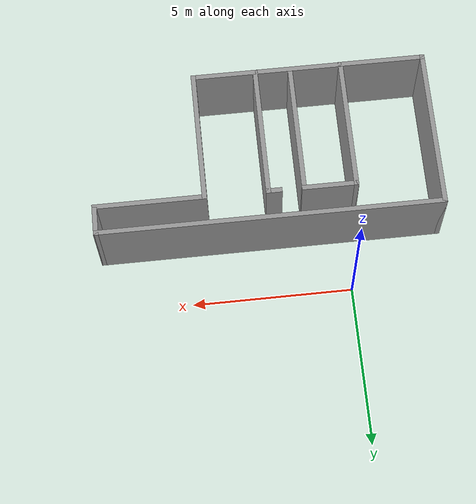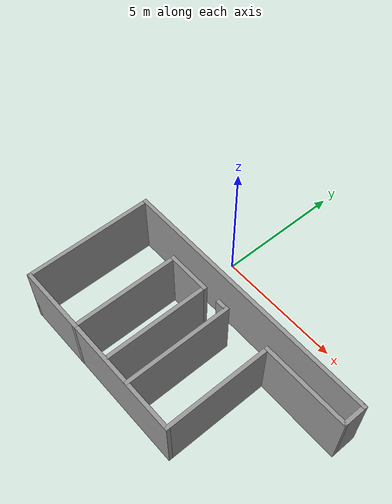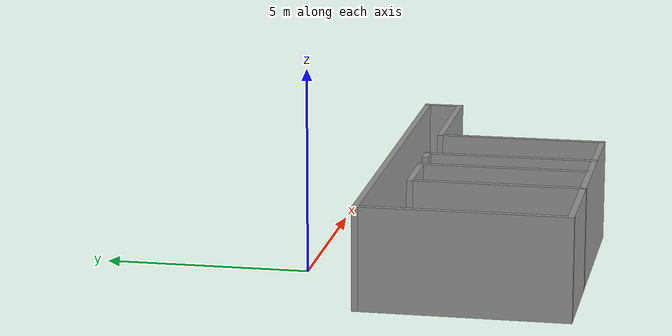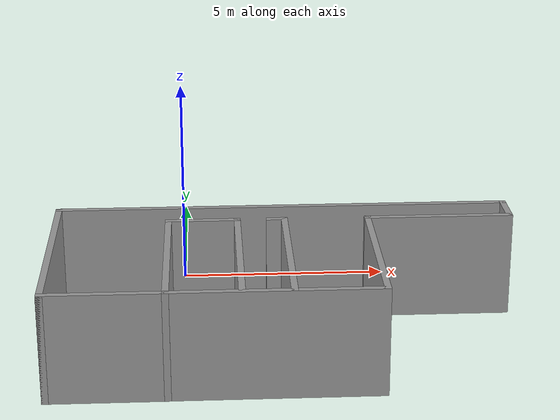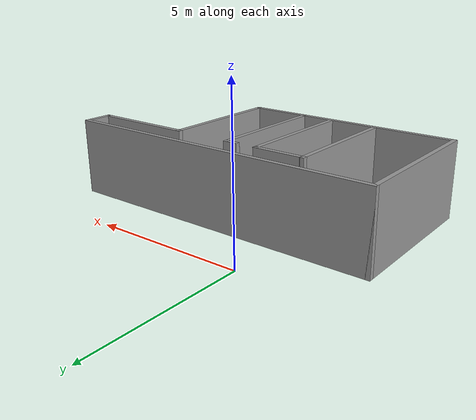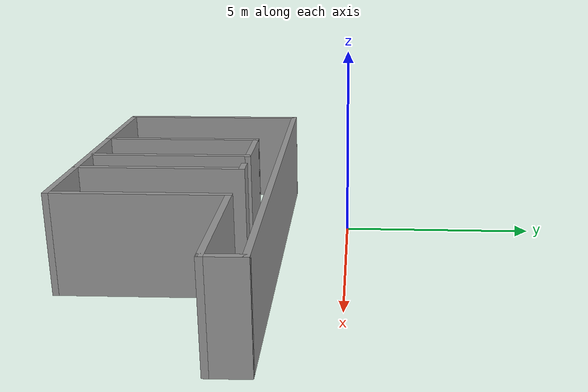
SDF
<?xml version='1.0'?>
<sdf version='1.7'>
  <model name='casa'>
    <pose>2.38 -3.3704 0 0 -0 0</pose>
    <link name='Wall_0'>
      <collision name='Wall_0_Collision'>
        <geometry>
          <box>
            <size>10.75 0.15 2.5</size>
          </box>
        </geometry>
        <pose>0 0 1.25 0 -0 0</pose>
      </collision>
      <visual name='Wall_0_Visual'>
        <pose>0 0 1.25 0 -0 0</pose>
        <geometry>
          <box>
            <size>10.75 0.15 2.5</size>
          </box>
        </geometry>
        <material>
          <script>
            <uri>file://media/materials/scripts/gazebo.material</uri>
            <name>Gazebo/Grey</name>
          </script>
          <ambient>1 1 1 1</ambient>
        </material>
        <meta>
          <layer>0</layer>
        </meta>
      </visual>
      <pose>0 1.6604 0 0 -0 0</pose>
    </link>
    <link name='Wall_1'>
      <collision name='Wall_1_Collision'>
        <geometry>
          <box>
            <size>1 0.15 2.5</size>
          </box>
        </geometry>
        <pose>0 0 1.25 0 -0 0</pose>
      </collision>
      <visual name='Wall_1_Visual'>
        <pose>0 0 1.25 0 -0 0</pose>
        <geometry>
          <box>
            <size>1 0.15 2.5</size>
          </box>
        </geometry>
        <material>
          <script>
            <uri>file://media/materials/scripts/gazebo.material</uri>
            <name>Gazebo/Grey</name>
          </script>
          <ambient>1 1 1 1</ambient>
        </material>
        <meta>
          <layer>0</layer>
        </meta>
      </visual>
      <pose>5.3 1.2354 0 0 -0 -1.5708</pose>
    </link>
    <link name='Wall_12'>
      <collision name='Wall_12_Collision'>
        <geometry>
          <box>
            <size>5.1058 0.15 2.5</size>
          </box>
        </geometry>
        <pose>0 0 1.25 0 -0 0</pose>
      </collision>
      <visual name='Wall_12_Visual'>
        <pose>0 0 1.25 0 -0 0</pose>
        <geometry>
          <box>
            <size>5.1058 0.15 2.5</size>
          </box>
        </geometry>
        <material>
          <script>
            <uri>file://media/materials/scripts/gazebo.material</uri>
            <name>Gazebo/Grey</name>
          </script>
          <ambient>1 1 1 1</ambient>
        </material>
        <meta>
          <layer>0</layer>
        </meta>
      </visual>
      <pose>-5.3 -0.8175 0 0 -0 -1.5708</pose>
    </link>
    <link name='Wall_17'>
      <collision name='Wall_17_Collision'>
        <geometry>
          <box>
            <size>2.75 0.15 2.5</size>
          </box>
        </geometry>
        <pose>0 0 1.25 0 -0 0</pose>
      </collision>
      <visual name='Wall_17_Visual'>
        <pose>0 0 1.25 0 -0 0</pose>
        <geometry>
          <box>
            <size>2.75 0.15 2.5</size>
          </box>
        </geometry>
        <material>
          <script>
            <uri>file://media/materials/scripts/gazebo.material</uri>
            <name>Gazebo/Grey</name>
          </script>
          <ambient>1 1 1 1</ambient>
        </material>
        <meta>
          <layer>0</layer>
        </meta>
      </visual>
      <pose>-4 -3.2954 0 0 -0 0</pose>
    </link>
    <link name='Wall_18'>
      <collision name='Wall_18_Collision'>
        <geometry>
          <box>
            <size>4.26323 0.15 2.5</size>
          </box>
        </geometry>
        <pose>0 0 1.25 0 -0 0</pose>
      </collision>
      <visual name='Wall_18_Visual'>
        <pose>0 0 1.25 0 -0 0</pose>
        <geometry>
          <box>
            <size>4.26323 0.15 2.5</size>
          </box>
        </geometry>
        <material>
          <script>
            <uri>file://media/materials/scripts/gazebo.material</uri>
            <name>Gazebo/Grey</name>
          </script>
          <ambient>1 1 1 1</ambient>
        </material>
        <meta>
          <layer>0</layer>
        </meta>
      </visual>
      <pose>-2.7 -1.23879 0 0 -0 1.5708</pose>
    </link>
    <link name='Wall_2'>
      <collision name='Wall_2_Collision'>
        <geometry>
          <box>
            <size>3.5 0.15 2.5</size>
          </box>
        </geometry>
        <pose>0 0 1.25 0 -0 0</pose>
      </collision>
      <visual name='Wall_2_Visual'>
        <pose>0 0 1.25 0 -0 0</pose>
        <geometry>
          <box>
            <size>3.5 0.15 2.5</size>
          </box>
        </geometry>
        <material>
          <script>
            <uri>file://media/materials/scripts/gazebo.material</uri>
            <name>Gazebo/Grey</name>
          </script>
          <ambient>1 1 1 1</ambient>
        </material>
        <meta>
          <layer>0</layer>
        </meta>
      </visual>
      <pose>3.625 0.8104 0 0 -0 3.14159</pose>
    </link>
    <link name='Wall_21'>
      <collision name='Wall_21_Collision'>
        <geometry>
          <box>
            <size>1.75005 0.15 2.5</size>
          </box>
        </geometry>
        <pose>0 0 1.25 0 -0 0</pose>
      </collision>
      <visual name='Wall_21_Visual'>
        <pose>0 0 1.25 0 -0 0</pose>
        <geometry>
          <box>
            <size>1.75005 0.15 2.5</size>
          </box>
        </geometry>
        <material>
          <script>
            <uri>file://media/materials/scripts/gazebo.material</uri>
            <name>Gazebo/Grey</name>
          </script>
          <ambient>1 1 1 1</ambient>
        </material>
        <meta>
          <layer>0</layer>
        </meta>
      </visual>
      <pose>-1.9 0.817825 0 0 -0 0</pose>
    </link>
    <link name='Wall_22'>
      <collision name='Wall_22_Collision'>
        <geometry>
          <box>
            <size>4.15742 0.15 2.5</size>
          </box>
        </geometry>
        <pose>0 0 1.25 0 -0 0</pose>
      </collision>
      <visual name='Wall_22_Visual'>
        <pose>0 0 1.25 0 -0 0</pose>
        <geometry>
          <box>
            <size>4.15742 0.15 2.5</size>
          </box>
        </geometry>
        <material>
          <script>
            <uri>file://media/materials/scripts/gazebo.material</uri>
            <name>Gazebo/Grey</name>
          </script>
          <ambient>1 1 1 1</ambient>
        </material>
        <meta>
          <layer>0</layer>
        </meta>
      </visual>
      <pose>-1.1 -1.18589 0 0 -0 -1.5708</pose>
    </link>
    <link name='Wall_28'>
      <collision name='Wall_28_Collision'>
        <geometry>
          <box>
            <size>4.25 0.15 2.5</size>
          </box>
        </geometry>
        <pose>0 0 1.25 0 -0 0</pose>
      </collision>
      <visual name='Wall_28_Visual'>
        <pose>0 0 1.25 0 -0 0</pose>
        <geometry>
          <box>
            <size>4.25 0.15 2.5</size>
          </box>
        </geometry>
        <material>
          <script>
            <uri>file://media/materials/scripts/gazebo.material</uri>
            <name>Gazebo/Grey</name>
          </script>
          <ambient>1 1 1 1</ambient>
        </material>
        <meta>
          <layer>0</layer>
        </meta>
      </visual>
      <pose>0 -1.23218 0 0 -0 -1.5708</pose>
    </link>
    <link name='Wall_33'>
      <collision name='Wall_33_Collision'>
        <geometry>
          <box>
            <size>0.5 0.15 2.5</size>
          </box>
        </geometry>
        <pose>0 0 1.25 0 -0 0</pose>
      </collision>
      <visual name='Wall_33_Visual'>
        <pose>0 0 1.25 0 -0 0</pose>
        <geometry>
          <box>
            <size>0.5 0.15 2.5</size>
          </box>
        </geometry>
        <material>
          <script>
            <uri>file://media/materials/scripts/gazebo.material</uri>
            <name>Gazebo/Grey</name>
          </script>
          <ambient>1 1 1 1</ambient>
        </material>
        <meta>
          <layer>0</layer>
        </meta>
      </visual>
      <pose>-0.175 0.817825 0 0 -0 3.14159</pose>
    </link>
    <link name='Wall_4'>
      <collision name='Wall_4_Collision'>
        <geometry>
          <box>
            <size>4.25 0.15 2.5</size>
          </box>
        </geometry>
        <pose>0 0 1.25 0 -0 0</pose>
      </collision>
      <visual name='Wall_4_Visual'>
        <pose>0 0 1.25 0 -0 0</pose>
        <geometry>
          <box>
            <size>4.25 0.15 2.5</size>
          </box>
        </geometry>
        <material>
          <script>
            <uri>file://media/materials/scripts/gazebo.material</uri>
            <name>Gazebo/Grey</name>
          </script>
          <ambient>1 1 1 1</ambient>
        </material>
        <meta>
          <layer>0</layer>
        </meta>
      </visual>
      <pose>1.95 -1.2396 0 0 -0 -1.5708</pose>
    </link>
    <link name='Wall_5'>
      <collision name='Wall_5_Collision'>
        <geometry>
          <box>
            <size>4.75 0.15 2.5</size>
          </box>
        </geometry>
        <pose>0 0 1.25 0 -0 0</pose>
      </collision>
      <visual name='Wall_5_Visual'>
        <pose>0 0 1.25 0 -0 0</pose>
        <geometry>
          <box>
            <size>4.75 0.15 2.5</size>
          </box>
        </geometry>
        <material>
          <script>
            <uri>file://media/materials/scripts/gazebo.material</uri>
            <name>Gazebo/Grey</name>
          </script>
          <ambient>1 1 1 1</ambient>
        </material>
        <meta>
          <layer>0</layer>
        </meta>
      </visual>
      <pose>-0.35 -3.2896 0 0 -0 3.14159</pose>
    </link>
    <static>1</static>
  </model>
</sdf>
